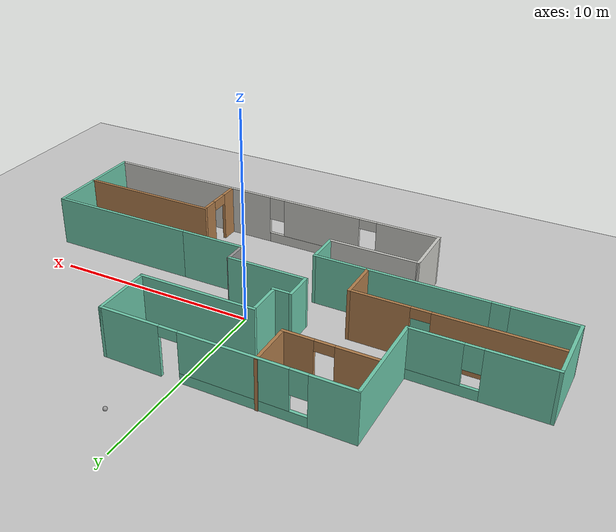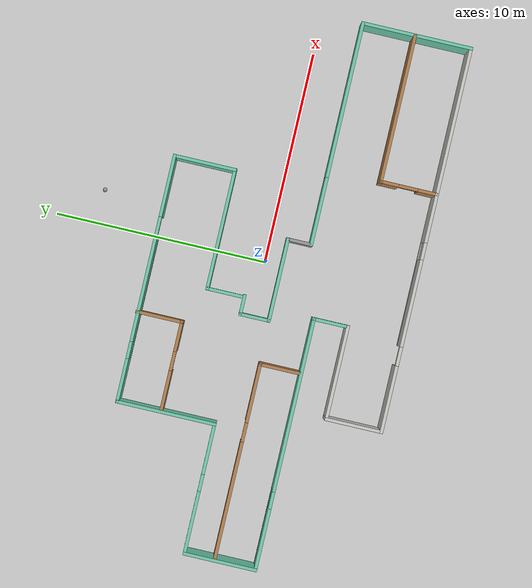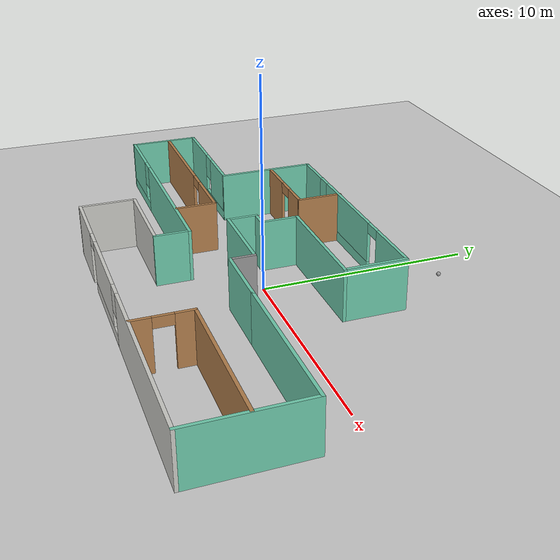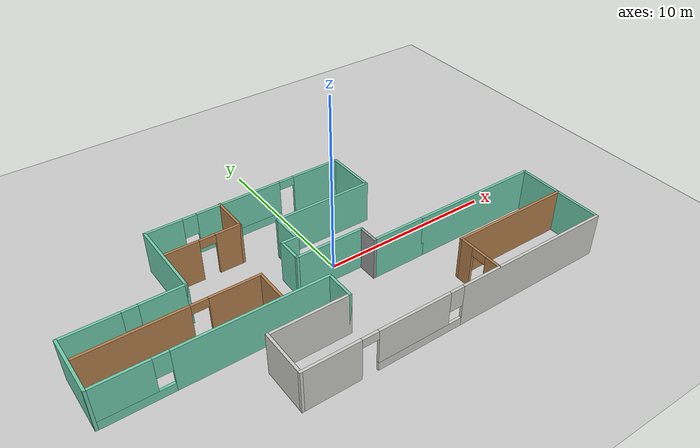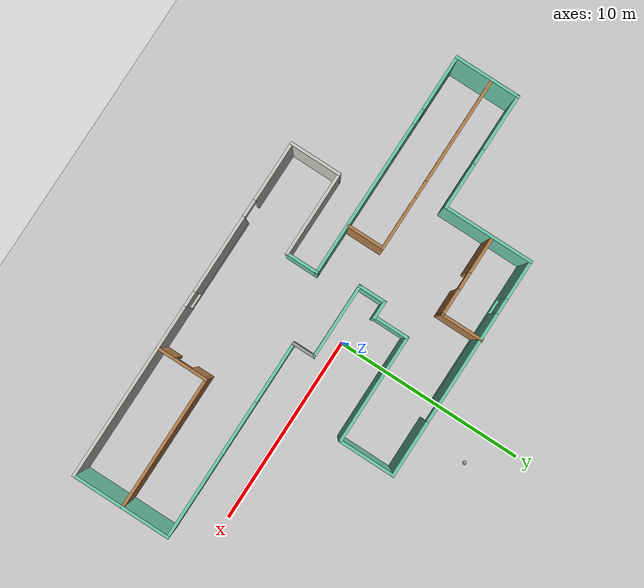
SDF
<sdf version="1.6">
 <world name="default">
  <light name="sun" type="directional">
   <pose>0 0 10 0 -0 0</pose>
   <diffuse>0.8 0.8 0.8 1</diffuse>
   <specular>0.2 0.2 0.2 1</specular>
   <attenuation>
    <range>1000</range>
    <constant>0.9</constant>
    <linear>0.01</linear>
    <quadratic>0.001</quadratic>
   </attenuation>
   <direction>-0.5 0.1 -0.9</direction>
  </light>
  <model name="ground_plane">
   <static>1</static>
   <link name="link">
    <collision name="collision">
     <geometry><plane><normal>0 0 1</normal><size>100 100</size></plane></geometry>
     <surface>
      <contact><collide_bitmask>65535</collide_bitmask></contact>
      <friction><ode><mu>100</mu><mu2>50</mu2></ode></friction>
     </surface>
    </collision>
    <visual name="visual">
     <cast_shadows>0</cast_shadows>
     <geometry><plane><normal>0 0 1</normal><size>100 100</size></plane></geometry>
     <material>
      <script><uri>file://media/materials/scripts/gazebo.material</uri><name>Gazebo/Grey</name></script>
     </material>
    </visual>
   </link>
  </model>
  <gravity>0 0 -9.8</gravity>
  <magnetic_field>6e-06 2.3e-05 -4.2e-05</magnetic_field>
  <atmosphere type="adiabatic"/>
  <physics name="default_physics" default="0" type="ode">
   <max_step_size>0.001</max_step_size>
   <real_time_factor>1</real_time_factor>
   <real_time_update_rate>1000</real_time_update_rate>
  </physics>
  <scene><ambient>0.4 0.4 0.4 1</ambient><background>0.7 0.7 0.7 1</background><shadows>1</shadows></scene>
  <spherical_coordinates>
   <surface_model>EARTH_WGS84</surface_model>
   <latitude_deg>0</latitude_deg>
   <longitude_deg>0</longitude_deg>
   <elevation>0</elevation>
   <heading_deg>0</heading_deg>
  </spherical_coordinates>
  <model name="builing2">
   <pose>-1.11 -0.885763 0 0 -0 0</pose>
   <link name="Wall_0">
    <collision name="Wall_0_Collision">
     <geometry><box><size>4 0.15 2.5</size></box></geometry>
     <pose>0 0 1.25 0 -0 0</pose>
    </collision>
    <visual name="Wall_0_Visual">
     <pose>0 0 1.25 0 -0 0</pose>
     <geometry><box><size>4 0.15 2.5</size></box></geometry>
     <material>
      <script><uri>file://media/materials/scripts/gazebo.material</uri><name>Gazebo/Grey</name></script>
      <ambient>0.435294 0.796078 0.67451 1</ambient>
     </material>
     <meta><layer>0</layer></meta>
    </visual>
    <pose>0.425 0.105763 0 0 -0 0</pose>
   </link>
   <link name="Wall_1">
    <collision name="Wall_1_Collision">
     <geometry><box><size>1.25 0.15 2.5</size></box></geometry>
     <pose>0 0 1.25 0 -0 0</pose>
    </collision>
    <visual name="Wall_1_Visual">
     <pose>0 0 1.25 0 -0 0</pose>
     <geometry><box><size>1.25 0.15 2.5</size></box></geometry>
     <material>
      <script><uri>file://media/materials/scripts/gazebo.material</uri><name>Gazebo/Grey</name></script>
      <ambient>1 1 1 1</ambient>
     </material>
     <meta><layer>0</layer></meta>
    </visual>
    <pose>2.35 -0.444237 0 0 -0 -1.5708</pose>
   </link>
   <link name="Wall_10">
    <collision name="Wall_10_Collision">
     <geometry><box><size>3.5 0.15 2.5</size></box></geometry>
     <pose>0 0 1.25 0 -0 0</pose>
    </collision>
    <visual name="Wall_10_Visual">
     <pose>0 0 1.25 0 -0 0</pose>
     <geometry><box><size>3.5 0.15 2.5</size></box></geometry>
     <material>
      <script><uri>file://media/materials/scripts/gazebo.material</uri><name>Gazebo/Grey</name></script>
      <ambient>0.435294 0.796078 0.67451 1</ambient>
     </material>
     <meta><layer>0</layer></meta>
    </visual>
    <pose>-12.8 -0.219237 0 0 -0 1.5708</pose>
   </link>
   <link name="Wall_11">
    <pose>-9.75 1.45576 0 0 -0 0</pose>
    <visual name="Wall_11_Visual_0">
     <pose>-1.61992 0 1.25 0 -0 0</pose>
     <geometry><box><size>3.01016 0.15 2.5</size></box></geometry>
     <material>
      <script><uri>file://media/materials/scripts/gazebo.material</uri><name>Gazebo/Grey</name></script>
      <ambient>0.435294 0.796078 0.67451 1</ambient>
     </material>
     <meta><layer>0</layer></meta>
    </visual>
    <collision name="Wall_11_Collision_0">
     <geometry><box><size>3.01016 0.15 2.5</size></box></geometry>
     <pose>-1.61992 0 1.25 0 -0 0</pose>
    </collision>
    <visual name="Wall_11_Visual_1">
     <pose>1.50508 0 0.25 0 -0 0</pose>
     <geometry><box><size>3.23984 0.15 0.5</size></box></geometry>
     <material>
      <script><uri>file://media/materials/scripts/gazebo.material</uri><name>Gazebo/Grey</name></script>
      <ambient>0.435294 0.796078 0.67451 1</ambient>
     </material>
     <meta><layer>0</layer></meta>
    </visual>
    <collision name="Wall_11_Collision_1">
     <geometry><box><size>3.23984 0.15 0.5</size></box></geometry>
     <pose>1.50508 0 0.25 0 -0 0</pose>
    </collision>
    <visual name="Wall_11_Visual_2">
     <pose>1.90508 0 1.5 0 -0 0</pose>
     <geometry><box><size>2.43984 0.15 2</size></box></geometry>
     <material>
      <script><uri>file://media/materials/scripts/gazebo.material</uri><name>Gazebo/Grey</name></script>
      <ambient>0.435294 0.796078 0.67451 1</ambient>
     </material>
     <meta><layer>0</layer></meta>
    </visual>
    <collision name="Wall_11_Collision_2">
     <geometry><box><size>2.43984 0.15 2</size></box></geometry>
     <pose>1.90508 0 1.5 0 -0 0</pose>
    </collision>
    <visual name="Wall_11_Visual_3">
     <pose>0.285161 0 1.9 0 -0 0</pose>
     <geometry><box><size>0.8 0.15 1.2</size></box></geometry>
     <material>
      <script><uri>file://media/materials/scripts/gazebo.material</uri><name>Gazebo/Grey</name></script>
      <ambient>0.435294 0.796078 0.67451 1</ambient>
     </material>
     <meta><layer>0</layer></meta>
    </visual>
    <collision name="Wall_11_Collision_3">
     <geometry><box><size>0.8 0.15 1.2</size></box></geometry>
     <pose>0.285161 0 1.9 0 -0 0</pose>
    </collision>
   </link>
   <link name="Wall_12">
    <collision name="Wall_12_Collision">
     <geometry><box><size>4.75 0.15 2.5</size></box></geometry>
     <pose>0 0 1.25 0 -0 0</pose>
    </collision>
    <visual name="Wall_12_Visual">
     <pose>0 0 1.25 0 -0 0</pose>
     <geometry><box><size>4.75 0.15 2.5</size></box></geometry>
     <material>
      <script><uri>file://media/materials/scripts/gazebo.material</uri><name>Gazebo/Grey</name></script>
      <ambient>0.435294 0.796078 0.67451 1</ambient>
     </material>
     <meta><layer>0</layer></meta>
    </visual>
    <pose>-6.7 3.75576 0 0 -0 1.5708</pose>
   </link>
   <link name="Wall_13">
    <pose>-0.9 6.05576 0 0 -0 0</pose>
    <visual name="Wall_13_Visual_0">
     <pose>-4.82092 0 1.25 0 -0 0</pose>
     <geometry><box><size>2.10816 0.15 2.5</size></box></geometry>
     <material>
      <script><uri>file://media/materials/scripts/gazebo.material</uri><name>Gazebo/Grey</name></script>
      <ambient>0.435294 0.796078 0.67451 1</ambient>
     </material>
     <meta><layer>0</layer></meta>
    </visual>
    <collision name="Wall_13_Collision_0">
     <geometry><box><size>2.10816 0.15 2.5</size></box></geometry>
     <pose>-4.82092 0 1.25 0 -0 0</pose>
    </collision>
    <visual name="Wall_13_Visual_1">
     <pose>4.40008 0 1.25 0 -0 0</pose>
     <geometry><box><size>2.94984 0.15 2.5</size></box></geometry>
     <material>
      <script><uri>file://media/materials/scripts/gazebo.material</uri><name>Gazebo/Grey</name></script>
      <ambient>0.435294 0.796078 0.67451 1</ambient>
     </material>
     <meta><layer>0</layer></meta>
    </visual>
    <collision name="Wall_13_Collision_1">
     <geometry><box><size>2.94984 0.15 2.5</size></box></geometry>
     <pose>4.40008 0 1.25 0 -0 0</pose>
    </collision>
    <visual name="Wall_13_Visual_2">
     <pose>-0.870839 0 0.25 0 -0 0</pose>
     <geometry><box><size>5.792 0.15 0.5</size></box></geometry>
     <material>
      <script><uri>file://media/materials/scripts/gazebo.material</uri><name>Gazebo/Grey</name></script>
      <ambient>0.435294 0.796078 0.67451 1</ambient>
     </material>
     <meta><layer>0</layer></meta>
    </visual>
    <collision name="Wall_13_Collision_2">
     <geometry><box><size>5.792 0.15 0.5</size></box></geometry>
     <pose>-0.870839 0 0.25 0 -0 0</pose>
    </collision>
    <visual name="Wall_13_Visual_3">
     <pose>-0.470839 0 1.5 0 -0 0</pose>
     <geometry><box><size>4.992 0.15 2</size></box></geometry>
     <material>
      <script><uri>file://media/materials/scripts/gazebo.material</uri><name>Gazebo/Grey</name></script>
      <ambient>0.435294 0.796078 0.67451 1</ambient>
     </material>
     <meta><layer>0</layer></meta>
    </visual>
    <collision name="Wall_13_Collision_3">
     <geometry><box><size>4.992 0.15 2</size></box></geometry>
     <pose>-0.470839 0 1.5 0 -0 0</pose>
    </collision>
    <visual name="Wall_13_Visual_4">
     <pose>-3.36684 0 1.9 0 -0 0</pose>
     <geometry><box><size>0.8 0.15 1.2</size></box></geometry>
     <material>
      <script><uri>file://media/materials/scripts/gazebo.material</uri><name>Gazebo/Grey</name></script>
      <ambient>0.435294 0.796078 0.67451 1</ambient>
     </material>
     <meta><layer>0</layer></meta>
    </visual>
    <collision name="Wall_13_Collision_4">
     <geometry><box><size>0.8 0.15 1.2</size></box></geometry>
     <pose>-3.36684 0 1.9 0 -0 0</pose>
    </collision>
    <visual name="Wall_13_Visual_5">
     <pose>2.47516 0 2.25 0 -0 0</pose>
     <geometry><box><size>0.9 0.15 0.5</size></box></geometry>
     <material>
      <script><uri>file://media/materials/scripts/gazebo.material</uri><name>Gazebo/Grey</name></script>
      <ambient>0.435294 0.796078 0.67451 1</ambient>
     </material>
     <meta><layer>0</layer></meta>
    </visual>
    <collision name="Wall_13_Collision_5">
     <geometry><box><size>0.9 0.15 0.5</size></box></geometry>
     <pose>2.47516 0 2.25 0 -0 0</pose>
    </collision>
   </link>
   <link name="Wall_14">
    <collision name="Wall_14_Collision">
     <geometry><box><size>3 0.15 2.5</size></box></geometry>
     <pose>0 0 1.25 0 -0 0</pose>
    </collision>
    <visual name="Wall_14_Visual">
     <pose>0 0 1.25 0 -0 0</pose>
     <geometry><box><size>3 0.15 2.5</size></box></geometry>
     <material>
      <script><uri>file://media/materials/scripts/gazebo.material</uri><name>Gazebo/Grey</name></script>
      <ambient>0.435294 0.796078 0.67451 1</ambient>
     </material>
     <meta><layer>0</layer></meta>
    </visual>
    <pose>4.9 4.63076 0 0 -0 -1.5708</pose>
   </link>
   <link name="Wall_15">
    <collision name="Wall_15_Collision">
     <geometry><box><size>5.75 0.15 2.5</size></box></geometry>
     <pose>0 0 1.25 0 -0 0</pose>
    </collision>
    <visual name="Wall_15_Visual">
     <pose>0 0 1.25 0 -0 0</pose>
     <geometry><box><size>5.75 0.15 2.5</size></box></geometry>
     <material>
      <script><uri>file://media/materials/scripts/gazebo.material</uri><name>Gazebo/Grey</name></script>
      <ambient>0.435294 0.796078 0.67451 1</ambient>
     </material>
     <meta><layer>0</layer></meta>
    </visual>
    <pose>2.1 3.20576 0 0 -0 3.14159</pose>
   </link>
   <link name="Wall_2">
    <collision name="Wall_2_Collision">
     <geometry><box><size>3.25 0.15 2.5</size></box></geometry>
     <pose>0 0 1.25 0 -0 0</pose>
    </collision>
    <visual name="Wall_2_Visual">
     <pose>0 0 1.25 0 -0 0</pose>
     <geometry><box><size>3.25 0.15 2.5</size></box></geometry>
     <material>
      <script><uri>file://media/materials/scripts/gazebo.material</uri><name>Gazebo/Grey</name></script>
      <ambient>0.435294 0.796078 0.67451 1</ambient>
     </material>
     <meta><layer>0</layer></meta>
    </visual>
    <pose>3.9 -0.994237 0 0 -0 0</pose>
   </link>
   <link name="Wall_23">
    <collision name="Wall_23_Collision">
     <geometry><box><size>1.75 0.15 2.5</size></box></geometry>
     <pose>0 0 1.25 0 -0 0</pose>
    </collision>
    <visual name="Wall_23_Visual">
     <pose>0 0 1.25 0 -0 0</pose>
     <geometry><box><size>1.75 0.15 2.5</size></box></geometry>
     <material>
      <script><uri>file://media/materials/scripts/gazebo.material</uri><name>Gazebo/Grey</name></script>
      <ambient>0.435294 0.796078 0.67451 1</ambient>
     </material>
     <meta><layer>0</layer></meta>
    </visual>
    <pose>-0.7 2.40576 0 0 -0 -1.5708</pose>
   </link>
   <link name="Wall_3">
    <collision name="Wall_3_Collision">
     <geometry><box><size>7.5 0.15 2.5</size></box></geometry>
     <pose>0 0 1.25 0 -0 0</pose>
    </collision>
    <visual name="Wall_3_Visual">
     <pose>0 0 1.25 0 -0 0</pose>
     <geometry><box><size>7.5 0.15 2.5</size></box></geometry>
     <material>
      <script><uri>file://media/materials/scripts/gazebo.material</uri><name>Gazebo/Grey</name></script>
      <ambient>0.435294 0.796078 0.67451 1</ambient>
     </material>
     <meta><layer>0</layer></meta>
    </visual>
    <pose>9.125 -0.994237 0 0 -0 0</pose>
   </link>
   <link name="Wall_30">
    <collision name="Wall_30_Collision">
     <geometry><box><size>1.5 0.15 2.5</size></box></geometry>
     <pose>0 0 1.25 0 -0 0</pose>
    </collision>
    <visual name="Wall_30_Visual">
     <pose>0 0 1.25 0 -0 0</pose>
     <geometry><box><size>1.5 0.15 2.5</size></box></geometry>
     <material>
      <script><uri>file://media/materials/scripts/gazebo.material</uri><name>Gazebo/Grey</name></script>
      <ambient>0.435294 0.796078 0.67451 1</ambient>
     </material>
     <meta><layer>0</layer></meta>
    </visual>
    <pose>-1.5 0.780763 0 0 -0 1.5708</pose>
   </link>
   <link name="Wall_31">
    <collision name="Wall_31_Collision">
     <geometry><box><size>1 0.15 2.5</size></box></geometry>
     <pose>0 0 1.25 0 -0 0</pose>
    </collision>
    <visual name="Wall_31_Visual">
     <pose>0 0 1.25 0 -0 0</pose>
     <geometry><box><size>1 0.15 2.5</size></box></geometry>
     <material>
      <script><uri>file://media/materials/scripts/gazebo.material</uri><name>Gazebo/Grey</name></script>
      <ambient>0.435294 0.796078 0.67451 1</ambient>
     </material>
     <meta><layer>0</layer></meta>
    </visual>
    <pose>-1.075 1.45576 0 0 -0 0</pose>
   </link>
   <link name="Wall_33">
    <collision name="Wall_33_Collision">
     <geometry><box><size>7 0.15 2.5</size></box></geometry>
     <pose>0 0 1.25 0 -0 0</pose>
    </collision>
    <visual name="Wall_33_Visual">
     <pose>0 0 1.25 0 -0 0</pose>
     <geometry><box><size>7 0.15 2.5</size></box></geometry>
     <material>
      <script><uri>file://media/materials/scripts/gazebo.material</uri><name>Gazebo/Wood</name></script>
      <ambient>1 1 1 1</ambient>
     </material>
     <meta><layer>0</layer></meta>
    </visual>
    <pose>9.32816 -3.45776 0 0 -0 3.14159</pose>
   </link>
   <link name="Wall_34">
    <pose>5.90316 -4.75776 0 0 -0 -1.5708</pose>
    <visual name="Wall_34_Visual_0">
     <pose>-0.9185 0 1.25 0 -0 0</pose>
     <geometry><box><size>0.913 0.15 2.5</size></box></geometry>
     <material>
      <script><uri>file://media/materials/scripts/gazebo.material</uri><name>Gazebo/Wood</name></script>
      <ambient>1 1 1 1</ambient>
     </material>
     <meta><layer>0</layer></meta>
    </visual>
    <collision name="Wall_34_Collision_0">
     <geometry><box><size>0.913 0.15 2.5</size></box></geometry>
     <pose>-0.9185 0 1.25 0 -0 0</pose>
    </collision>
    <visual name="Wall_34_Visual_1">
     <pose>0.9065 0 1.25 0 -0 0</pose>
     <geometry><box><size>0.937 0.15 2.5</size></box></geometry>
     <material>
      <script><uri>file://media/materials/scripts/gazebo.material</uri><name>Gazebo/Wood</name></script>
      <ambient>1 1 1 1</ambient>
     </material>
     <meta><layer>0</layer></meta>
    </visual>
    <collision name="Wall_34_Collision_1">
     <geometry><box><size>0.937 0.15 2.5</size></box></geometry>
     <pose>0.9065 0 1.25 0 -0 0</pose>
    </collision>
    <visual name="Wall_34_Visual_2">
     <pose>-0.012 0 2.25 0 -0 0</pose>
     <geometry><box><size>0.9 0.15 0.5</size></box></geometry>
     <material>
      <script><uri>file://media/materials/scripts/gazebo.material</uri><name>Gazebo/Wood</name></script>
      <ambient>1 1 1 1</ambient>
     </material>
     <meta><layer>0</layer></meta>
    </visual>
    <collision name="Wall_34_Collision_2">
     <geometry><box><size>0.9 0.15 0.5</size></box></geometry>
     <pose>-0.012 0 2.25 0 -0 0</pose>
    </collision>
   </link>
   <link name="Wall_37">
    <pose>-4.51684 3.99424 0 0 -0 0</pose>
    <visual name="Wall_37_Visual_0">
     <pose>-1.1855 0 1.25 0 -0 0</pose>
     <geometry><box><size>1.879 0.15 2.5</size></box></geometry>
     <material>
      <script><uri>file://media/materials/scripts/gazebo.material</uri><name>Gazebo/Wood</name></script>
      <ambient>1 1 1 1</ambient>
     </material>
     <meta><layer>0</layer></meta>
    </visual>
    <collision name="Wall_37_Collision_0">
     <geometry><box><size>1.879 0.15 2.5</size></box></geometry>
     <pose>-1.1855 0 1.25 0 -0 0</pose>
    </collision>
    <visual name="Wall_37_Visual_1">
     <pose>1.3895 0 1.25 0 -0 0</pose>
     <geometry><box><size>1.471 0.15 2.5</size></box></geometry>
     <material>
      <script><uri>file://media/materials/scripts/gazebo.material</uri><name>Gazebo/Wood</name></script>
      <ambient>1 1 1 1</ambient>
     </material>
     <meta><layer>0</layer></meta>
    </visual>
    <collision name="Wall_37_Collision_1">
     <geometry><box><size>1.471 0.15 2.5</size></box></geometry>
     <pose>1.3895 0 1.25 0 -0 0</pose>
    </collision>
    <visual name="Wall_37_Visual_2">
     <pose>0.204 0 2.25 0 -0 0</pose>
     <geometry><box><size>0.9 0.15 0.5</size></box></geometry>
     <material>
      <script><uri>file://media/materials/scripts/gazebo.material</uri><name>Gazebo/Wood</name></script>
      <ambient>1 1 1 1</ambient>
     </material>
     <meta><layer>0</layer></meta>
    </visual>
    <collision name="Wall_37_Collision_2">
     <geometry><box><size>0.9 0.15 0.5</size></box></geometry>
     <pose>0.204 0 2.25 0 -0 0</pose>
    </collision>
   </link>
   <link name="Wall_38">
    <collision name="Wall_38_Collision">
     <geometry><box><size>2.25 0.15 2.5</size></box></geometry>
     <pose>0 0 1.25 0 -0 0</pose>
    </collision>
    <visual name="Wall_38_Visual">
     <pose>0 0 1.25 0 -0 0</pose>
     <geometry><box><size>2.25 0.15 2.5</size></box></geometry>
     <material>
      <script><uri>file://media/materials/scripts/gazebo.material</uri><name>Gazebo/Wood</name></script>
      <ambient>1 1 1 1</ambient>
     </material>
     <meta><layer>0</layer></meta>
    </visual>
    <pose>-2.46684 5.04424 0 0 -0 1.5708</pose>
   </link>
   <link name="Wall_4">
    <collision name="Wall_4_Collision">
     <geometry><box><size>5.25 0.15 2.5</size></box></geometry>
     <pose>0 0 1.25 0 -0 0</pose>
    </collision>
    <visual name="Wall_4_Visual">
     <pose>0 0 1.25 0 -0 0</pose>
     <geometry><box><size>5.25 0.15 2.5</size></box></geometry>
     <material>
      <script><uri>file://media/materials/scripts/gazebo.material</uri><name>Gazebo/Grey</name></script>
      <ambient>0.435294 0.796078 0.67451 1</ambient>
     </material>
     <meta><layer>0</layer></meta>
    </visual>
    <pose>12.8 -3.54424 0 0 -0 -1.5708</pose>
   </link>
   <link name="Wall_40">
    <pose>-8.08884 0.038237 0 0 -0 0</pose>
    <visual name="Wall_40_Visual_0">
     <pose>-1.8685 0 1.25 0 -0 0</pose>
     <geometry><box><size>5.513 0.15 2.5</size></box></geometry>
     <material>
      <script><uri>file://media/materials/scripts/gazebo.material</uri><name>Gazebo/Wood</name></script>
      <ambient>1 1 1 1</ambient>
     </material>
     <meta><layer>0</layer></meta>
    </visual>
    <collision name="Wall_40_Collision_0">
     <geometry><box><size>5.513 0.15 2.5</size></box></geometry>
     <pose>-1.8685 0 1.25 0 -0 0</pose>
    </collision>
    <visual name="Wall_40_Visual_1">
     <pose>3.2065 0 1.25 0 -0 0</pose>
     <geometry><box><size>2.837 0.15 2.5</size></box></geometry>
     <material>
      <script><uri>file://media/materials/scripts/gazebo.material</uri><name>Gazebo/Wood</name></script>
      <ambient>1 1 1 1</ambient>
     </material>
     <meta><layer>0</layer></meta>
    </visual>
    <collision name="Wall_40_Collision_1">
     <geometry><box><size>2.837 0.15 2.5</size></box></geometry>
     <pose>3.2065 0 1.25 0 -0 0</pose>
    </collision>
    <visual name="Wall_40_Visual_2">
     <pose>1.338 0 2.25 0 -0 0</pose>
     <geometry><box><size>0.9 0.15 0.5</size></box></geometry>
     <material>
      <script><uri>file://media/materials/scripts/gazebo.material</uri><name>Gazebo/Wood</name></script>
      <ambient>1 1 1 1</ambient>
     </material>
     <meta><layer>0</layer></meta>
    </visual>
    <collision name="Wall_40_Collision_2">
     <geometry><box><size>0.9 0.15 0.5</size></box></geometry>
     <pose>1.338 0 2.25 0 -0 0</pose>
    </collision>
   </link>
   <link name="Wall_41">
    <collision name="Wall_41_Collision">
     <geometry><box><size>2 0.15 2.5</size></box></geometry>
     <pose>0 0 1.25 0 -0 0</pose>
    </collision>
    <visual name="Wall_41_Visual">
     <pose>0 0 1.25 0 -0 0</pose>
     <geometry><box><size>2 0.15 2.5</size></box></geometry>
     <material>
      <script><uri>file://media/materials/scripts/gazebo.material</uri><name>Gazebo/Wood</name></script>
      <ambient>1 1 1 1</ambient>
     </material>
     <meta><layer>0</layer></meta>
    </visual>
    <pose>-3.53884 -0.886763 0 0 -0 -1.5708</pose>
   </link>
   <link name="Wall_5">
    <pose>3.75 -6.09424 0 0 -0 3.14159</pose>
    <visual name="Wall_5_Visual_0">
     <pose>-4.50308 0 1.25 0 -0 0</pose>
     <geometry><box><size>9.24384 0.15 2.5</size></box></geometry>
     <material>
      <script><uri>file://media/materials/scripts/gazebo.material</uri><name>Gazebo/CeilingTiled</name></script>
      <ambient>0.435294 0.796078 0.67451 1</ambient>
     </material>
     <meta><layer>0</layer></meta>
    </visual>
    <collision name="Wall_5_Collision_0">
     <geometry><box><size>9.24384 0.15 2.5</size></box></geometry>
     <pose>-4.50308 0 1.25 0 -0 0</pose>
    </collision>
    <visual name="Wall_5_Visual_1">
     <pose>7.53092 0 1.25 0 -0 0</pose>
     <geometry><box><size>3.18816 0.15 2.5</size></box></geometry>
     <material>
      <script><uri>file://media/materials/scripts/gazebo.material</uri><name>Gazebo/CeilingTiled</name></script>
      <ambient>0.435294 0.796078 0.67451 1</ambient>
     </material>
     <meta><layer>0</layer></meta>
    </visual>
    <collision name="Wall_5_Collision_1">
     <geometry><box><size>3.18816 0.15 2.5</size></box></geometry>
     <pose>7.53092 0 1.25 0 -0 0</pose>
    </collision>
    <visual name="Wall_5_Visual_2">
     <pose>2.57784 0 0.25 0 -0 0</pose>
     <geometry><box><size>4.918 0.15 0.5</size></box></geometry>
     <material>
      <script><uri>file://media/materials/scripts/gazebo.material</uri><name>Gazebo/CeilingTiled</name></script>
      <ambient>0.435294 0.796078 0.67451 1</ambient>
     </material>
     <meta><layer>0</layer></meta>
    </visual>
    <collision name="Wall_5_Collision_2">
     <geometry><box><size>4.918 0.15 0.5</size></box></geometry>
     <pose>2.57784 0 0.25 0 -0 0</pose>
    </collision>
    <visual name="Wall_5_Visual_3">
     <pose>2.97784 0 1.5 0 -0 0</pose>
     <geometry><box><size>4.118 0.15 2</size></box></geometry>
     <material>
      <script><uri>file://media/materials/scripts/gazebo.material</uri><name>Gazebo/CeilingTiled</name></script>
      <ambient>0.435294 0.796078 0.67451 1</ambient>
     </material>
     <meta><layer>0</layer></meta>
    </visual>
    <collision name="Wall_5_Collision_3">
     <geometry><box><size>4.118 0.15 2</size></box></geometry>
     <pose>2.97784 0 1.5 0 -0 0</pose>
    </collision>
    <visual name="Wall_5_Visual_4">
     <pose>0.518839 0 1.9 0 -0 0</pose>
     <geometry><box><size>0.8 0.15 1.2</size></box></geometry>
     <material>
      <script><uri>file://media/materials/scripts/gazebo.material</uri><name>Gazebo/CeilingTiled</name></script>
      <ambient>0.435294 0.796078 0.67451 1</ambient>
     </material>
     <meta><layer>0</layer></meta>
    </visual>
    <collision name="Wall_5_Collision_4">
     <geometry><box><size>0.8 0.15 1.2</size></box></geometry>
     <pose>0.518839 0 1.9 0 -0 0</pose>
    </collision>
    <visual name="Wall_5_Visual_5">
     <pose>5.48684 0 2.25 0 -0 0</pose>
     <geometry><box><size>0.9 0.15 0.5</size></box></geometry>
     <material>
      <script><uri>file://media/materials/scripts/gazebo.material</uri><name>Gazebo/CeilingTiled</name></script>
      <ambient>0.435294 0.796078 0.67451 1</ambient>
     </material>
     <meta><layer>0</layer></meta>
    </visual>
    <collision name="Wall_5_Collision_5">
     <geometry><box><size>0.9 0.15 0.5</size></box></geometry>
     <pose>5.48684 0 2.25 0 -0 0</pose>
    </collision>
   </link>
   <link name="Wall_6">
    <collision name="Wall_6_Collision">
     <geometry><box><size>2.75 0.15 2.5</size></box></geometry>
     <pose>0 0 1.25 0 -0 0</pose>
    </collision>
    <visual name="Wall_6_Visual">
     <pose>0 0 1.25 0 -0 0</pose>
     <geometry><box><size>2.75 0.15 2.5</size></box></geometry>
     <material>
      <script><uri>file://media/materials/scripts/gazebo.material</uri><name>Gazebo/CeilingTiled</name></script>
      <ambient>0.435294 0.796078 0.67451 1</ambient>
     </material>
     <meta><layer>0</layer></meta>
    </visual>
    <pose>-5.3 -4.79424 0 0 -0 1.5708</pose>
   </link>
   <link name="Wall_7">
    <collision name="Wall_7_Collision">
     <geometry><box><size>4.5 0.15 2.5</size></box></geometry>
     <pose>0 0 1.25 0 -0 0</pose>
    </collision>
    <visual name="Wall_7_Visual">
     <pose>0 0 1.25 0 -0 0</pose>
     <geometry><box><size>4.5 0.15 2.5</size></box></geometry>
     <material>
      <script><uri>file://media/materials/scripts/gazebo.material</uri><name>Gazebo/CeilingTiled</name></script>
      <ambient>0.435294 0.796078 0.67451 1</ambient>
     </material>
     <meta><layer>0</layer></meta>
    </visual>
    <pose>-3.125 -3.49424 0 0 -0 0</pose>
   </link>
   <link name="Wall_8">
    <collision name="Wall_8_Collision">
     <geometry><box><size>1.75 0.15 2.5</size></box></geometry>
     <pose>0 0 1.25 0 -0 0</pose>
    </collision>
    <visual name="Wall_8_Visual">
     <pose>0 0 1.25 0 -0 0</pose>
     <geometry><box><size>1.75 0.15 2.5</size></box></geometry>
     <material>
      <script><uri>file://media/materials/scripts/gazebo.material</uri><name>Gazebo/Grey</name></script>
      <ambient>0.435294 0.796078 0.67451 1</ambient>
     </material>
     <meta><layer>0</layer></meta>
    </visual>
    <pose>-0.95 -2.69424 0 0 -0 1.5708</pose>
   </link>
   <link name="Wall_9">
    <pose>-6.875 -1.89424 0 0 -0 3.14159</pose>
    <visual name="Wall_9_Visual_0">
     <pose>-1.88208 0 1.25 0 -0 0</pose>
     <geometry><box><size>8.23584 0.15 2.5</size></box></geometry>
     <material>
      <script><uri>file://media/materials/scripts/gazebo.material</uri><name>Gazebo/Grey</name></script>
      <ambient>0.435294 0.796078 0.67451 1</ambient>
     </material>
     <meta><layer>0</layer></meta>
    </visual>
    <collision name="Wall_9_Collision_0">
     <geometry><box><size>8.23584 0.15 2.5</size></box></geometry>
     <pose>-1.88208 0 1.25 0 -0 0</pose>
    </collision>
    <visual name="Wall_9_Visual_1">
     <pose>4.11792 0 0.25 0 -0 0</pose>
     <geometry><box><size>3.76416 0.15 0.5</size></box></geometry>
     <material>
      <script><uri>file://media/materials/scripts/gazebo.material</uri><name>Gazebo/Grey</name></script>
      <ambient>0.435294 0.796078 0.67451 1</ambient>
     </material>
     <meta><layer>0</layer></meta>
    </visual>
    <collision name="Wall_9_Collision_1">
     <geometry><box><size>3.76416 0.15 0.5</size></box></geometry>
     <pose>4.11792 0 0.25 0 -0 0</pose>
    </collision>
    <visual name="Wall_9_Visual_2">
     <pose>4.51792 0 1.5 0 -0 0</pose>
     <geometry><box><size>2.96416 0.15 2</size></box></geometry>
     <material>
      <script><uri>file://media/materials/scripts/gazebo.material</uri><name>Gazebo/Grey</name></script>
      <ambient>0.435294 0.796078 0.67451 1</ambient>
     </material>
     <meta><layer>0</layer></meta>
    </visual>
    <collision name="Wall_9_Collision_2">
     <geometry><box><size>2.96416 0.15 2</size></box></geometry>
     <pose>4.51792 0 1.5 0 -0 0</pose>
    </collision>
    <visual name="Wall_9_Visual_3">
     <pose>2.63584 0 1.9 0 -0 0</pose>
     <geometry><box><size>0.8 0.15 1.2</size></box></geometry>
     <material>
      <script><uri>file://media/materials/scripts/gazebo.material</uri><name>Gazebo/Grey</name></script>
      <ambient>0.435294 0.796078 0.67451 1</ambient>
     </material>
     <meta><layer>0</layer></meta>
    </visual>
    <collision name="Wall_9_Collision_3">
     <geometry><box><size>0.8 0.15 1.2</size></box></geometry>
     <pose>2.63584 0 1.9 0 -0 0</pose>
    </collision>
   </link>
   <static>1</static>
  </model>
  <model name="my_ball">
   <link name="link_0">
    <inertial>
     <mass>1</mass>
     <inertia><ixx>0.1</ixx><ixy>0</ixy><ixz>0</ixz><iyy>0.1</iyy><iyz>0</iyz><izz>0.1</izz></inertia>
    </inertial>
    <visual name="visual">
     <geometry><sphere><radius>0.1</radius></sphere></geometry>
     <material>
      <lighting>1</lighting>
      <script><uri>file://media/materials/scripts/gazebo.material</uri><name>Gazebo/Grey</name></script>
      <shader type="pixel"><normal_map>__default__</normal_map></shader>
      <ambient>1 1 1 1</ambient>
      <diffuse>1 1 1 1</diffuse>
      <specular>1 1 1 1</specular>
      <emissive>1 1 1 1</emissive>
     </material>
    </visual>
    <collision name="collision">
     <geometry><sphere><radius>0.1</radius></sphere></geometry>
     <surface>
      <friction>
       <ode><mu>1</mu><mu2>1</mu2><fdir1>0 0 0</fdir1><slip1>0</slip1><slip2>0</slip2></ode>
       <torsional>
        <coefficient>1</coefficient>
        <patch_radius>0</patch_radius>
        <surface_radius>0</surface_radius>
        <use_patch_radius>1</use_patch_radius>
        <ode><slip>0</slip></ode>
       </torsional>
      </friction>
      <bounce><restitution_coefficient>0</restitution_coefficient><threshold>1e+06</threshold></bounce>
      <contact>
       <collide_without_contact>0</collide_without_contact>
       <collide_without_contact_bitmask>1</collide_without_contact_bitmask>
       <collide_bitmask>1</collide_bitmask>
       <ode>
        <soft_cfm>0</soft_cfm>
        <soft_erp>0.2</soft_erp>
        <kp>1e+13</kp>
        <kd>1</kd>
        <max_vel>0.01</max_vel>
        <min_depth>0</min_depth>
       </ode>
       <bullet>
        <split_impulse>1</split_impulse>
        <split_impulse_penetration_threshold>-0.01</split_impulse_penetration_threshold>
        <soft_cfm>0</soft_cfm>
        <soft_erp>0.2</soft_erp>
        <kp>1e+13</kp>
        <kd>1</kd>
       </bullet>
      </contact>
     </surface>
    </collision>
   </link>
   <static>0</static>
   <pose>1.59964 8.06817 0.1 0 -0 0</pose>
  </model>
 </world>
</sdf>
